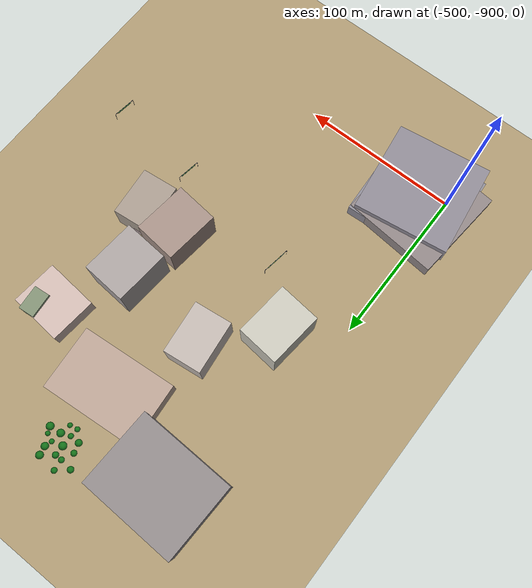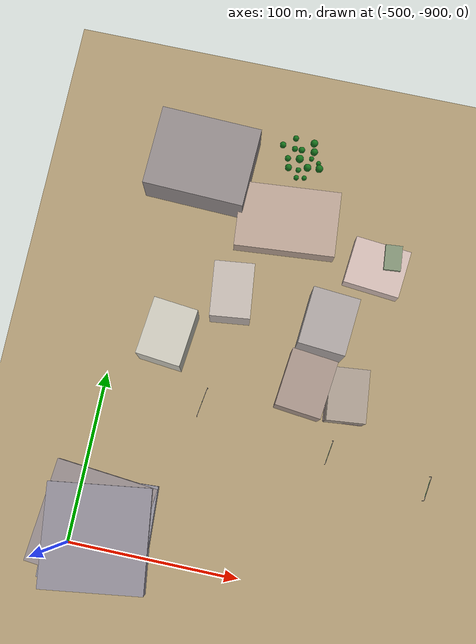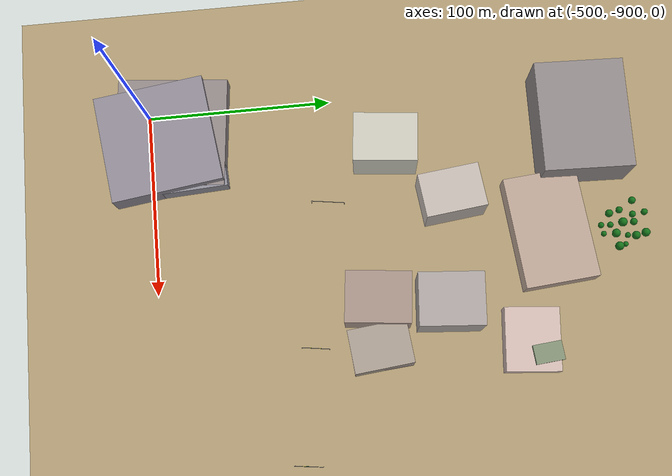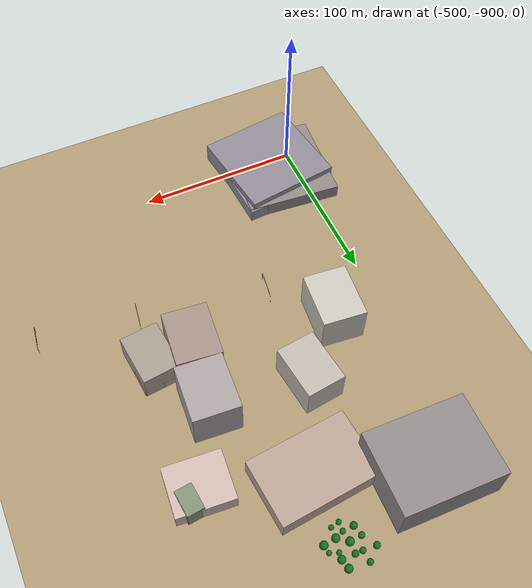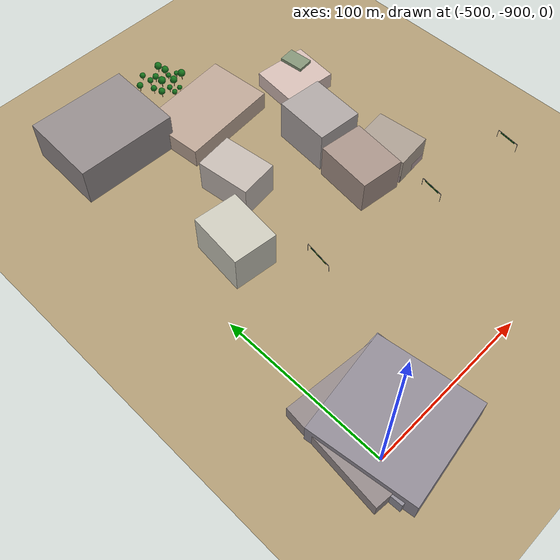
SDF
<sdf version="1.9">
 <world name="crossroad_world">
  <model name="ground_plane">
   <static>true</static>
   <pose>0 0 -0.05 0 0 0</pose>
   <link name="link">
    <collision name="collision">
     <geometry><plane><normal>0 0 1</normal><size>10000 10000</size></plane></geometry>
    </collision>
    <visual name="visual">
     <geometry><plane><normal>0 0 1</normal><size>15000 15000</size></plane></geometry>
     <material><ambient>0.68 0.60 0.45 1</ambient><diffuse>0.68 0.60 0.45 1</diffuse></material>
    </visual>
   </link>
  </model>
  <model name="gantry_106">
   <static>true</static>
   <pose>-303.886 -827.244 0 0 0 4.583</pose>
   <link name="link">
    <visual name="post_l">
     <pose>-7.300 0 2.925 0 0 0</pose>
     <geometry><cylinder><radius>0.1</radius><length>5.85</length></cylinder></geometry>
     <material><ambient>0.30 0.30 0.35 1</ambient><diffuse>0.30 0.30 0.35 1</diffuse></material>
    </visual>
    <visual name="post_r">
     <pose>7.300 0 2.925 0 0 0</pose>
     <geometry><cylinder><radius>0.1</radius><length>5.85</length></cylinder></geometry>
     <material><ambient>0.30 0.30 0.35 1</ambient><diffuse>0.30 0.30 0.35 1</diffuse></material>
    </visual>
    <visual name="beam">
     <pose>0 0 6.000 0 0 0</pose>
     <geometry><box><size>14.600 0.22 0.22</size></box></geometry>
     <material><ambient>0.30 0.30 0.35 1</ambient><diffuse>0.30 0.30 0.35 1</diffuse></material>
    </visual>
    <visual name="sign_border">
     <pose>0 -0.14 5.450 0 0 0</pose>
     <geometry><box><size>10.592 0.04 0.92</size></box></geometry>
     <material><ambient>0.90 0.85 0.10 1</ambient><diffuse>0.90 0.85 0.10 1</diffuse></material>
    </visual>
    <visual name="sign_panel">
     <pose>0 -0.15 5.450 0 0 0</pose>
     <geometry><box><size>10.512 0.05 0.86</size></box></geometry>
     <material><ambient>0.05 0.38 0.10 1</ambient><diffuse>0.05 0.38 0.10 1</diffuse></material>
    </visual>
    <collision name="col_post_l">
     <pose>-7.300 0 2.925 0 0 0</pose>
     <geometry><cylinder><radius>0.1</radius><length>5.85</length></cylinder></geometry>
    </collision>
    <collision name="col_post_r">
     <pose>7.300 0 2.925 0 0 0</pose>
     <geometry><cylinder><radius>0.1</radius><length>5.85</length></cylinder></geometry>
    </collision>
    <collision name="col_beam">
     <pose>0 0 6.000 0 0 0</pose>
     <geometry><box><size>14.600 0.22 0.22</size></box></geometry>
    </collision>
   </link>
  </model>
  <model name="gantry_107">
   <static>true</static>
   <pose>-363.269 -818.677 0 0 0 4.564</pose>
   <link name="link">
    <visual name="post_l">
     <pose>-7.300 0 2.925 0 0 0</pose>
     <geometry><cylinder><radius>0.1</radius><length>5.85</length></cylinder></geometry>
     <material><ambient>0.30 0.30 0.35 1</ambient><diffuse>0.30 0.30 0.35 1</diffuse></material>
    </visual>
    <visual name="post_r">
     <pose>7.300 0 2.925 0 0 0</pose>
     <geometry><cylinder><radius>0.1</radius><length>5.85</length></cylinder></geometry>
     <material><ambient>0.30 0.30 0.35 1</ambient><diffuse>0.30 0.30 0.35 1</diffuse></material>
    </visual>
    <visual name="beam">
     <pose>0 0 6.000 0 0 0</pose>
     <geometry><box><size>14.600 0.22 0.22</size></box></geometry>
     <material><ambient>0.30 0.30 0.35 1</ambient><diffuse>0.30 0.30 0.35 1</diffuse></material>
    </visual>
    <visual name="sign_border">
     <pose>0 -0.14 5.450 0 0 0</pose>
     <geometry><box><size>10.592 0.04 0.92</size></box></geometry>
     <material><ambient>0.90 0.85 0.10 1</ambient><diffuse>0.90 0.85 0.10 1</diffuse></material>
    </visual>
    <visual name="sign_panel">
     <pose>0 -0.15 5.450 0 0 0</pose>
     <geometry><box><size>10.512 0.05 0.86</size></box></geometry>
     <material><ambient>0.05 0.38 0.10 1</ambient><diffuse>0.05 0.38 0.10 1</diffuse></material>
    </visual>
    <collision name="col_post_l">
     <pose>-7.300 0 2.925 0 0 0</pose>
     <geometry><cylinder><radius>0.1</radius><length>5.85</length></cylinder></geometry>
    </collision>
    <collision name="col_post_r">
     <pose>7.300 0 2.925 0 0 0</pose>
     <geometry><cylinder><radius>0.1</radius><length>5.85</length></cylinder></geometry>
    </collision>
    <collision name="col_beam">
     <pose>0 0 6.000 0 0 0</pose>
     <geometry><box><size>14.600 0.22 0.22</size></box></geometry>
    </collision>
   </link>
  </model>
  <model name="gantry_110">
   <static>true</static>
   <pose>-441.258 -805.368 0 0 0 4.564</pose>
   <link name="link">
    <visual name="post_l">
     <pose>-8.900 0 2.925 0 0 0</pose>
     <geometry><cylinder><radius>0.1</radius><length>5.85</length></cylinder></geometry>
     <material><ambient>0.30 0.30 0.35 1</ambient><diffuse>0.30 0.30 0.35 1</diffuse></material>
    </visual>
    <visual name="post_r">
     <pose>8.900 0 2.925 0 0 0</pose>
     <geometry><cylinder><radius>0.1</radius><length>5.85</length></cylinder></geometry>
     <material><ambient>0.30 0.30 0.35 1</ambient><diffuse>0.30 0.30 0.35 1</diffuse></material>
    </visual>
    <visual name="beam">
     <pose>0 0 6.000 0 0 0</pose>
     <geometry><box><size>17.800 0.22 0.22</size></box></geometry>
     <material><ambient>0.30 0.30 0.35 1</ambient><diffuse>0.30 0.30 0.35 1</diffuse></material>
    </visual>
    <visual name="sign_border">
     <pose>0 -0.14 5.450 0 0 0</pose>
     <geometry><box><size>12.896 0.04 0.92</size></box></geometry>
     <material><ambient>0.90 0.85 0.10 1</ambient><diffuse>0.90 0.85 0.10 1</diffuse></material>
    </visual>
    <visual name="sign_panel">
     <pose>0 -0.15 5.450 0 0 0</pose>
     <geometry><box><size>12.816 0.05 0.86</size></box></geometry>
     <material><ambient>0.05 0.38 0.10 1</ambient><diffuse>0.05 0.38 0.10 1</diffuse></material>
    </visual>
    <collision name="col_post_l">
     <pose>-8.900 0 2.925 0 0 0</pose>
     <geometry><cylinder><radius>0.1</radius><length>5.85</length></cylinder></geometry>
    </collision>
    <collision name="col_post_r">
     <pose>8.900 0 2.925 0 0 0</pose>
     <geometry><cylinder><radius>0.1</radius><length>5.85</length></cylinder></geometry>
    </collision>
    <collision name="col_beam">
     <pose>0 0 6.000 0 0 0</pose>
     <geometry><box><size>17.800 0.22 0.22</size></box></geometry>
    </collision>
   </link>
  </model>
  <model name="tree_116">
   <static>true</static>
   <pose>-426.421 -641.660 0 0 0 0</pose>
   <link name="link">
    <visual name="trunk">
     <pose>0 0 1.663 0 0 0</pose>
     <geometry><cylinder><radius>0.146</radius><length>3.326</length></cylinder></geometry>
     <material><ambient>0.38 0.22 0.08 1</ambient><diffuse>0.38 0.22 0.08 1</diffuse></material>
    </visual>
    <visual name="canopy">
     <pose>0 0 4.610 0 0 0</pose>
     <geometry><sphere><radius>1.975</radius></sphere></geometry>
     <material><ambient>0.08 0.44 0.10 1</ambient><diffuse>0.08 0.44 0.10 1</diffuse></material>
    </visual>
    <collision name="col">
     <pose>0 0 1.663 0 0 0</pose>
     <geometry><cylinder><radius>0.146</radius><length>3.326</length></cylinder></geometry>
    </collision>
   </link>
  </model>
  <model name="tree_117">
   <static>true</static>
   <pose>-420.374 -655.112 0 0 0 0</pose>
   <link name="link">
    <visual name="trunk">
     <pose>0 0 1.769 0 0 0</pose>
     <geometry><cylinder><radius>0.155</radius><length>3.537</length></cylinder></geometry>
     <material><ambient>0.38 0.22 0.08 1</ambient><diffuse>0.38 0.22 0.08 1</diffuse></material>
    </visual>
    <visual name="canopy">
     <pose>0 0 4.902 0 0 0</pose>
     <geometry><sphere><radius>2.100</radius></sphere></geometry>
     <material><ambient>0.08 0.44 0.10 1</ambient><diffuse>0.08 0.44 0.10 1</diffuse></material>
    </visual>
    <collision name="col">
     <pose>0 0 1.769 0 0 0</pose>
     <geometry><cylinder><radius>0.155</radius><length>3.537</length></cylinder></geometry>
    </collision>
   </link>
  </model>
  <model name="tree_118">
   <static>true</static>
   <pose>-421.864 -649.283 0 0 0 0</pose>
   <link name="link">
    <visual name="trunk">
     <pose>0 0 1.573 0 0 0</pose>
     <geometry><cylinder><radius>0.138</radius><length>3.145</length></cylinder></geometry>
     <material><ambient>0.38 0.22 0.08 1</ambient><diffuse>0.38 0.22 0.08 1</diffuse></material>
    </visual>
    <visual name="canopy">
     <pose>0 0 4.359 0 0 0</pose>
     <geometry><sphere><radius>1.867</radius></sphere></geometry>
     <material><ambient>0.08 0.44 0.10 1</ambient><diffuse>0.08 0.44 0.10 1</diffuse></material>
    </visual>
    <collision name="col">
     <pose>0 0 1.573 0 0 0</pose>
     <geometry><cylinder><radius>0.138</radius><length>3.145</length></cylinder></geometry>
    </collision>
   </link>
  </model>
  <model name="tree_119">
   <static>true</static>
   <pose>-418.850 -642.419 0 0 0 0</pose>
   <link name="link">
    <visual name="trunk">
     <pose>0 0 1.518 0 0 0</pose>
     <geometry><cylinder><radius>0.133</radius><length>3.037</length></cylinder></geometry>
     <material><ambient>0.38 0.22 0.08 1</ambient><diffuse>0.38 0.22 0.08 1</diffuse></material>
    </visual>
    <visual name="canopy">
     <pose>0 0 4.209 0 0 0</pose>
     <geometry><sphere><radius>1.803</radius></sphere></geometry>
     <material><ambient>0.08 0.44 0.10 1</ambient><diffuse>0.08 0.44 0.10 1</diffuse></material>
    </visual>
    <collision name="col">
     <pose>0 0 1.518 0 0 0</pose>
     <geometry><cylinder><radius>0.133</radius><length>3.037</length></cylinder></geometry>
    </collision>
   </link>
  </model>
  <model name="tree_120">
   <static>true</static>
   <pose>-419.515 -635.839 0 0 0 0</pose>
   <link name="link">
    <visual name="trunk">
     <pose>0 0 1.519 0 0 0</pose>
     <geometry><cylinder><radius>0.133</radius><length>3.038</length></cylinder></geometry>
     <material><ambient>0.38 0.22 0.08 1</ambient><diffuse>0.38 0.22 0.08 1</diffuse></material>
    </visual>
    <visual name="canopy">
     <pose>0 0 4.211 0 0 0</pose>
     <geometry><sphere><radius>1.804</radius></sphere></geometry>
     <material><ambient>0.08 0.44 0.10 1</ambient><diffuse>0.08 0.44 0.10 1</diffuse></material>
    </visual>
    <collision name="col">
     <pose>0 0 1.519 0 0 0</pose>
     <geometry><cylinder><radius>0.133</radius><length>3.038</length></cylinder></geometry>
    </collision>
   </link>
  </model>
  <model name="tree_121">
   <static>true</static>
   <pose>-414.511 -660.073 0 0 0 0</pose>
   <link name="link">
    <visual name="trunk">
     <pose>0 0 1.359 0 0 0</pose>
     <geometry><cylinder><radius>0.119</radius><length>2.717</length></cylinder></geometry>
     <material><ambient>0.38 0.22 0.08 1</ambient><diffuse>0.38 0.22 0.08 1</diffuse></material>
    </visual>
    <visual name="canopy">
     <pose>0 0 3.766 0 0 0</pose>
     <geometry><sphere><radius>1.613</radius></sphere></geometry>
     <material><ambient>0.08 0.44 0.10 1</ambient><diffuse>0.08 0.44 0.10 1</diffuse></material>
    </visual>
    <collision name="col">
     <pose>0 0 1.359 0 0 0</pose>
     <geometry><cylinder><radius>0.119</radius><length>2.717</length></cylinder></geometry>
    </collision>
   </link>
  </model>
  <model name="tree_122">
   <static>true</static>
   <pose>-414.205 -655.084 0 0 0 0</pose>
   <link name="link">
    <visual name="trunk">
     <pose>0 0 1.388 0 0 0</pose>
     <geometry><cylinder><radius>0.121</radius><length>2.777</length></cylinder></geometry>
     <material><ambient>0.38 0.22 0.08 1</ambient><diffuse>0.38 0.22 0.08 1</diffuse></material>
    </visual>
    <visual name="canopy">
     <pose>0 0 3.849 0 0 0</pose>
     <geometry><sphere><radius>1.649</radius></sphere></geometry>
     <material><ambient>0.08 0.44 0.10 1</ambient><diffuse>0.08 0.44 0.10 1</diffuse></material>
    </visual>
    <collision name="col">
     <pose>0 0 1.388 0 0 0</pose>
     <geometry><cylinder><radius>0.121</radius><length>2.777</length></cylinder></geometry>
    </collision>
   </link>
  </model>
  <model name="tree_123">
   <static>true</static>
   <pose>-414.744 -648.637 0 0 0 0</pose>
   <link name="link">
    <visual name="trunk">
     <pose>0 0 2.034 0 0 0</pose>
     <geometry><cylinder><radius>0.178</radius><length>4.068</length></cylinder></geometry>
     <material><ambient>0.38 0.22 0.08 1</ambient><diffuse>0.38 0.22 0.08 1</diffuse></material>
    </visual>
    <visual name="canopy">
     <pose>0 0 5.638 0 0 0</pose>
     <geometry><sphere><radius>2.415</radius></sphere></geometry>
     <material><ambient>0.08 0.44 0.10 1</ambient><diffuse>0.08 0.44 0.10 1</diffuse></material>
    </visual>
    <collision name="col">
     <pose>0 0 2.034 0 0 0</pose>
     <geometry><cylinder><radius>0.178</radius><length>4.068</length></cylinder></geometry>
    </collision>
   </link>
  </model>
  <model name="tree_124">
   <static>true</static>
   <pose>-414.615 -642.437 0 0 0 0</pose>
   <link name="link">
    <visual name="trunk">
     <pose>0 0 1.628 0 0 0</pose>
     <geometry><cylinder><radius>0.142</radius><length>3.256</length></cylinder></geometry>
     <material><ambient>0.38 0.22 0.08 1</ambient><diffuse>0.38 0.22 0.08 1</diffuse></material>
    </visual>
    <visual name="canopy">
     <pose>0 0 4.512 0 0 0</pose>
     <geometry><sphere><radius>1.933</radius></sphere></geometry>
     <material><ambient>0.08 0.44 0.10 1</ambient><diffuse>0.08 0.44 0.10 1</diffuse></material>
    </visual>
    <collision name="col">
     <pose>0 0 1.628 0 0 0</pose>
     <geometry><cylinder><radius>0.142</radius><length>3.256</length></cylinder></geometry>
    </collision>
   </link>
  </model>
  <model name="tree_127">
   <static>true</static>
   <pose>-409.747 -659.213 0 0 0 0</pose>
   <link name="link">
    <visual name="trunk">
     <pose>0 0 1.268 0 0 0</pose>
     <geometry><cylinder><radius>0.111</radius><length>2.536</length></cylinder></geometry>
     <material><ambient>0.38 0.22 0.08 1</ambient><diffuse>0.38 0.22 0.08 1</diffuse></material>
    </visual>
    <visual name="canopy">
     <pose>0 0 3.514 0 0 0</pose>
     <geometry><sphere><radius>1.506</radius></sphere></geometry>
     <material><ambient>0.08 0.44 0.10 1</ambient><diffuse>0.08 0.44 0.10 1</diffuse></material>
    </visual>
    <collision name="col">
     <pose>0 0 1.268 0 0 0</pose>
     <geometry><cylinder><radius>0.111</radius><length>2.536</length></cylinder></geometry>
    </collision>
   </link>
  </model>
  <model name="tree_128">
   <static>true</static>
   <pose>-409.064 -653.050 0 0 0 0</pose>
   <link name="link">
    <visual name="trunk">
     <pose>0 0 1.943 0 0 0</pose>
     <geometry><cylinder><radius>0.170</radius><length>3.886</length></cylinder></geometry>
     <material><ambient>0.38 0.22 0.08 1</ambient><diffuse>0.38 0.22 0.08 1</diffuse></material>
    </visual>
    <visual name="canopy">
     <pose>0 0 5.386 0 0 0</pose>
     <geometry><sphere><radius>2.307</radius></sphere></geometry>
     <material><ambient>0.08 0.44 0.10 1</ambient><diffuse>0.08 0.44 0.10 1</diffuse></material>
    </visual>
    <collision name="col">
     <pose>0 0 1.943 0 0 0</pose>
     <geometry><cylinder><radius>0.170</radius><length>3.886</length></cylinder></geometry>
    </collision>
   </link>
  </model>
  <model name="tree_129">
   <static>true</static>
   <pose>-407.723 -646.392 0 0 0 0</pose>
   <link name="link">
    <visual name="trunk">
     <pose>0 0 1.289 0 0 0</pose>
     <geometry><cylinder><radius>0.113</radius><length>2.578</length></cylinder></geometry>
     <material><ambient>0.38 0.22 0.08 1</ambient><diffuse>0.38 0.22 0.08 1</diffuse></material>
    </visual>
    <visual name="canopy">
     <pose>0 0 3.573 0 0 0</pose>
     <geometry><sphere><radius>1.531</radius></sphere></geometry>
     <material><ambient>0.08 0.44 0.10 1</ambient><diffuse>0.08 0.44 0.10 1</diffuse></material>
    </visual>
    <collision name="col">
     <pose>0 0 1.289 0 0 0</pose>
     <geometry><cylinder><radius>0.113</radius><length>2.578</length></cylinder></geometry>
    </collision>
   </link>
  </model>
  <model name="tree_130">
   <static>true</static>
   <pose>-406.943 -642.455 0 0 0 0</pose>
   <link name="link">
    <visual name="trunk">
     <pose>0 0 1.878 0 0 0</pose>
     <geometry><cylinder><radius>0.164</radius><length>3.757</length></cylinder></geometry>
     <material><ambient>0.38 0.22 0.08 1</ambient><diffuse>0.38 0.22 0.08 1</diffuse></material>
    </visual>
    <visual name="canopy">
     <pose>0 0 5.207 0 0 0</pose>
     <geometry><sphere><radius>2.231</radius></sphere></geometry>
     <material><ambient>0.08 0.44 0.10 1</ambient><diffuse>0.08 0.44 0.10 1</diffuse></material>
    </visual>
    <collision name="col">
     <pose>0 0 1.878 0 0 0</pose>
     <geometry><cylinder><radius>0.164</radius><length>3.757</length></cylinder></geometry>
    </collision>
   </link>
  </model>
  <model name="tree_131">
   <static>true</static>
   <pose>-407.989 -637.146 0 0 0 0</pose>
   <link name="link">
    <visual name="trunk">
     <pose>0 0 1.935 0 0 0</pose>
     <geometry><cylinder><radius>0.169</radius><length>3.870</length></cylinder></geometry>
     <material><ambient>0.38 0.22 0.08 1</ambient><diffuse>0.38 0.22 0.08 1</diffuse></material>
    </visual>
    <visual name="canopy">
     <pose>0 0 5.363 0 0 0</pose>
     <geometry><sphere><radius>2.298</radius></sphere></geometry>
     <material><ambient>0.08 0.44 0.10 1</ambient><diffuse>0.08 0.44 0.10 1</diffuse></material>
    </visual>
    <collision name="col">
     <pose>0 0 1.935 0 0 0</pose>
     <geometry><cylinder><radius>0.169</radius><length>3.870</length></cylinder></geometry>
    </collision>
   </link>
  </model>
  <model name="tree_132">
   <static>true</static>
   <pose>-401.945 -652.278 0 0 0 0</pose>
   <link name="link">
    <visual name="trunk">
     <pose>0 0 1.978 0 0 0</pose>
     <geometry><cylinder><radius>0.173</radius><length>3.955</length></cylinder></geometry>
     <material><ambient>0.38 0.22 0.08 1</ambient><diffuse>0.38 0.22 0.08 1</diffuse></material>
    </visual>
    <visual name="canopy">
     <pose>0 0 5.482 0 0 0</pose>
     <geometry><sphere><radius>2.348</radius></sphere></geometry>
     <material><ambient>0.08 0.44 0.10 1</ambient><diffuse>0.08 0.44 0.10 1</diffuse></material>
    </visual>
    <collision name="col">
     <pose>0 0 1.978 0 0 0</pose>
     <geometry><cylinder><radius>0.173</radius><length>3.955</length></cylinder></geometry>
    </collision>
   </link>
  </model>
  <model name="tree_133">
   <static>true</static>
   <pose>-402.972 -648.299 0 0 0 0</pose>
   <link name="link">
    <visual name="trunk">
     <pose>0 0 1.233 0 0 0</pose>
     <geometry><cylinder><radius>0.108</radius><length>2.466</length></cylinder></geometry>
     <material><ambient>0.38 0.22 0.08 1</ambient><diffuse>0.38 0.22 0.08 1</diffuse></material>
    </visual>
    <visual name="canopy">
     <pose>0 0 3.418 0 0 0</pose>
     <geometry><sphere><radius>1.464</radius></sphere></geometry>
     <material><ambient>0.08 0.44 0.10 1</ambient><diffuse>0.08 0.44 0.10 1</diffuse></material>
    </visual>
    <collision name="col">
     <pose>0 0 1.233 0 0 0</pose>
     <geometry><cylinder><radius>0.108</radius><length>2.466</length></cylinder></geometry>
    </collision>
   </link>
  </model>
  <model name="building_252">
   <static>true</static>
   <pose>-488.147 -887.010 4.567 0 0 -0.093</pose>
   <link name="link">
    <visual name="body">
     <geometry><box><size>60.00 60.00 9.13</size></box></geometry>
     <material><ambient>0.57 0.53 0.53 1</ambient><diffuse>0.57 0.53 0.53 1</diffuse></material>
    </visual>
    <collision name="col"><geometry><box><size>60.00 60.00 9.13</size></box></geometry></collision>
   </link>
  </model>
  <model name="building_253">
   <static>true</static>
   <pose>-468.557 -771.809 12.581 0 0 -0.103</pose>
   <link name="link">
    <visual name="body">
     <geometry><box><size>26.20 34.00 25.16</size></box></geometry>
     <material><ambient>0.79 0.78 0.73 1</ambient><diffuse>0.79 0.78 0.73 1</diffuse></material>
    </visual>
    <collision name="col"><geometry><box><size>26.20 34.00 25.16</size></box></geometry></collision>
   </link>
  </model>
  <model name="building_354">
   <static>true</static>
   <pose>-483.656 -893.589 6.570 0 0 0.136</pose>
   <link name="link">
    <visual name="body">
     <geometry><box><size>60.00 60.00 13.14</size></box></geometry>
     <material><ambient>0.56 0.54 0.58 1</ambient><diffuse>0.56 0.54 0.58 1</diffuse></material>
    </visual>
    <collision name="col"><geometry><box><size>60.00 60.00 13.14</size></box></geometry></collision>
   </link>
  </model>
  <model name="building_362">
   <static>true</static>
   <pose>-483.656 -889.777 4.261 0 0 0.055</pose>
   <link name="link">
    <visual name="body">
     <geometry><box><size>60.00 60.00 8.52</size></box></geometry>
     <material><ambient>0.56 0.55 0.59 1</ambient><diffuse>0.56 0.55 0.59 1</diffuse></material>
    </visual>
    <collision name="col"><geometry><box><size>60.00 60.00 8.52</size></box></geometry></collision>
   </link>
  </model>
  <model name="building_380">
   <static>true</static>
   <pose>-348.919 -699.258 6.193 0 0 0.092</pose>
   <link name="link">
    <visual name="body">
     <geometry><box><size>10.04 15.19 12.39</size></box></geometry>
     <material><ambient>0.51 0.57 0.46 1</ambient><diffuse>0.51 0.57 0.46 1</diffuse></material>
    </visual>
    <collision name="col"><geometry><box><size>10.04 15.19 12.39</size></box></geometry></collision>
   </link>
  </model>
  <model name="building_381">
   <static>true</static>
   <pose>-356.710 -706.067 5.186 0 0 -0.093</pose>
   <link name="link">
    <visual name="body">
     <geometry><box><size>33.49 28.75 10.37</size></box></geometry>
     <material><ambient>0.82 0.73 0.70 1</ambient><diffuse>0.82 0.73 0.70 1</diffuse></material>
    </visual>
    <collision name="col"><geometry><box><size>33.49 28.75 10.37</size></box></geometry></collision>
   </link>
  </model>
  <model name="building_482">
   <static>true</static>
   <pose>-470.873 -665.992 12.508 0 0 -0.035</pose>
   <link name="link">
    <visual name="body">
     <geometry><box><size>60.00 47.65 25.02</size></box></geometry>
     <material><ambient>0.57 0.54 0.54 1</ambient><diffuse>0.57 0.54 0.54 1</diffuse></material>
    </visual>
    <collision name="col"><geometry><box><size>60.00 47.65 25.02</size></box></geometry></collision>
   </link>
  </model>
  <model name="building_483">
   <static>true</static>
   <pose>-414.417 -688.841 6.106 0 0 0.084</pose>
   <link name="link">
    <visual name="body">
     <geometry><box><size>60.00 39.56 12.21</size></box></geometry>
     <material><ambient>0.73 0.64 0.58 1</ambient><diffuse>0.73 0.64 0.58 1</diffuse></material>
    </visual>
    <collision name="col"><geometry><box><size>60.00 39.56 12.21</size></box></geometry></collision>
   </link>
  </model>
  <model name="building_485">
   <static>true</static>
   <pose>-437.404 -739.497 10.606 0 0 0.115</pose>
   <link name="link">
    <visual name="body">
     <geometry><box><size>23.55 32.65 21.21</size></box></geometry>
     <material><ambient>0.76 0.72 0.69 1</ambient><diffuse>0.76 0.72 0.69 1</diffuse></material>
    </visual>
    <collision name="col"><geometry><box><size>23.55 32.65 21.21</size></box></geometry></collision>
   </link>
  </model>
  <model name="building_486">
   <static>true</static>
   <pose>-384.867 -783.893 10.973 0 0 -0.109</pose>
   <link name="link">
    <visual name="body">
     <geometry><box><size>26.99 34.19 21.95</size></box></geometry>
     <material><ambient>0.65 0.57 0.53 1</ambient><diffuse>0.65 0.57 0.53 1</diffuse></material>
    </visual>
    <collision name="col"><geometry><box><size>26.99 34.19 21.95</size></box></geometry></collision>
   </link>
  </model>
  <model name="building_487">
   <static>true</static>
   <pose>-379.505 -747.086 13.494 0 0 -0.079</pose>
   <link name="link">
    <visual name="body">
     <geometry><box><size>27.63 33.88 26.99</size></box></geometry>
     <material><ambient>0.67 0.64 0.63 1</ambient><diffuse>0.67 0.64 0.63 1</diffuse></material>
    </visual>
    <collision name="col"><geometry><box><size>27.63 33.88 26.99</size></box></geometry></collision>
   </link>
  </model>
  <model name="building_488">
   <static>true</static>
   <pose>-360.006 -784.960 8.490 0 0 0.102</pose>
   <link name="link">
    <visual name="body">
     <geometry><box><size>22.79 31.05 16.98</size></box></geometry>
     <material><ambient>0.66 0.61 0.56 1</ambient><diffuse>0.66 0.61 0.56 1</diffuse></material>
    </visual>
    <collision name="col"><geometry><box><size>22.79 31.05 16.98</size></box></geometry></collision>
   </link>
  </model>
  <model name="building_489">
   <static>true</static>
   <pose>-360.006 -784.960 2.594 0 0 0.080</pose>
   <link name="link">
    <visual name="body">
     <geometry><box><size>22.79 31.05 5.19</size></box></geometry>
     <material><ambient>0.70 0.62 0.62 1</ambient><diffuse>0.70 0.62 0.62 1</diffuse></material>
    </visual>
    <collision name="col"><geometry><box><size>22.79 31.05 5.19</size></box></geometry></collision>
   </link>
  </model>
 </world>
</sdf>
